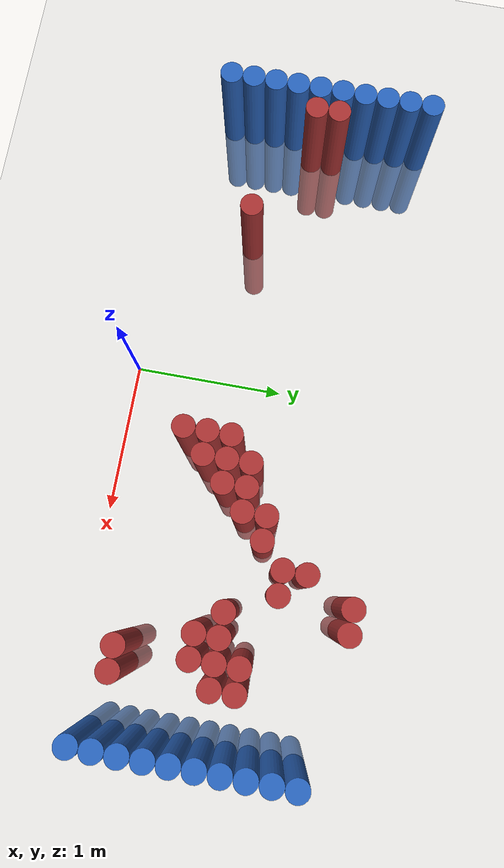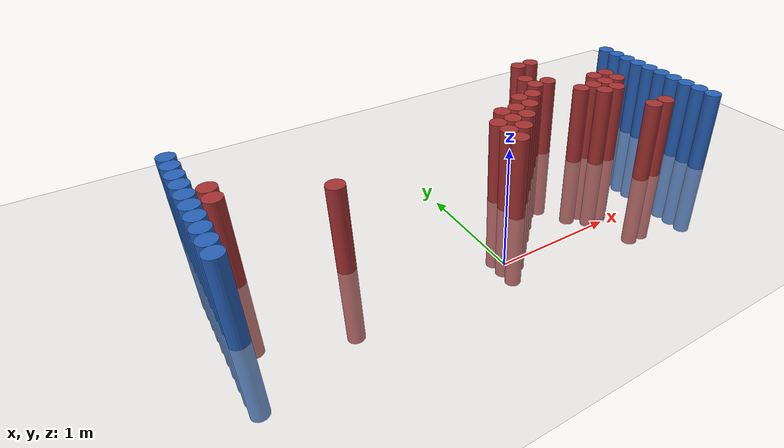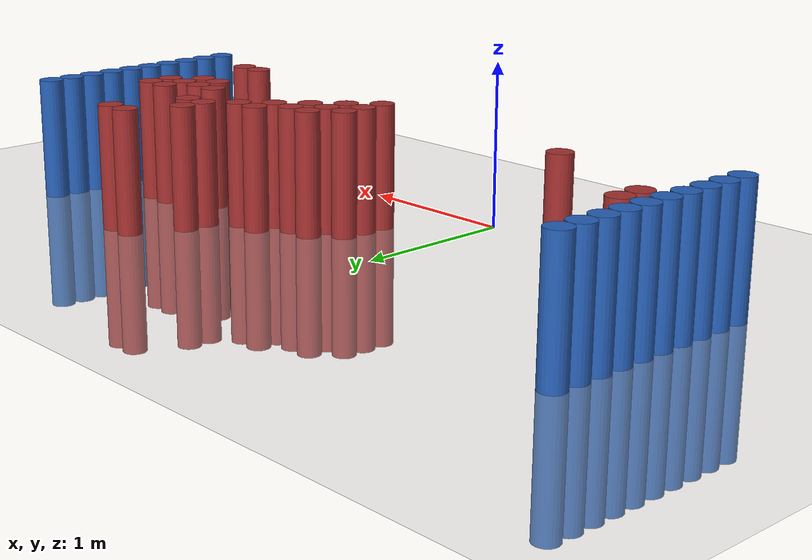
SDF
<sdf version="1.6">
 <world name="default">
  <model name="ground_plane">
   <static>1</static>
   <link name="link">
    <collision name="collision">
     <geometry><plane><normal>0 0 1</normal><size>100 100</size></plane></geometry>
     <surface><friction><ode><mu>100</mu><mu2>50</mu2></ode></friction></surface>
    </collision>
    <visual name="visual">
     <cast_shadows>0</cast_shadows>
     <geometry><plane><normal>0 0 1</normal><size>100 100</size></plane></geometry>
     <material>
      <script><uri>file://media/materials/scripts/gazebo.material</uri><name>Gazebo/Grey</name></script>
     </material>
    </visual>
   </link>
  </model>
  <model name="unit_cylinder_97">
   <static>1</static>
   <pose>-1.925000 0.325000 0.000000 0.000000 0.000000 0.000000</pose>
   <link name="link">
    <inertial>
     <mass>1</mass>
     <inertia><ixx>0.145833</ixx><ixy>0</ixy><ixz>0</ixz><iyy>0.145833</iyy><iyz>0</iyz><izz>0.125</izz></inertia>
    </inertial>
    <collision name="collision">
     <geometry><cylinder><radius>0.075000</radius><length>1.5</length></cylinder></geometry>
    </collision>
    <visual name="visual">
     <geometry><cylinder><radius>0.075000</radius><length>1.5</length></cylinder></geometry>
     <material>
      <ambient>0.152000 0.379000 0.720000 1</ambient>
      <diffuse>0.152000 0.379000 0.720000 1</diffuse>
     </material>
     <material>
      <script><name>Gazebo/Grey</name><uri>file://media/materials/scripts/gazebo.material</uri></script>
     </material>
    </visual>
   </link>
  </model>
  <model name="unit_cylinder_98">
   <static>1</static>
   <pose>-1.925000 0.475000 0.000000 0.000000 0.000000 0.000000</pose>
   <link name="link">
    <inertial>
     <mass>1</mass>
     <inertia><ixx>0.145833</ixx><ixy>0</ixy><ixz>0</ixz><iyy>0.145833</iyy><iyz>0</iyz><izz>0.125</izz></inertia>
    </inertial>
    <collision name="collision">
     <geometry><cylinder><radius>0.075000</radius><length>1.5</length></cylinder></geometry>
    </collision>
    <visual name="visual">
     <geometry><cylinder><radius>0.075000</radius><length>1.5</length></cylinder></geometry>
     <material>
      <ambient>0.152000 0.379000 0.720000 1</ambient>
      <diffuse>0.152000 0.379000 0.720000 1</diffuse>
     </material>
     <material>
      <script><name>Gazebo/Grey</name><uri>file://media/materials/scripts/gazebo.material</uri></script>
     </material>
    </visual>
   </link>
  </model>
  <model name="unit_cylinder_99">
   <static>1</static>
   <pose>-1.925000 0.625000 0.000000 0.000000 0.000000 0.000000</pose>
   <link name="link">
    <inertial>
     <mass>1</mass>
     <inertia><ixx>0.145833</ixx><ixy>0</ixy><ixz>0</ixz><iyy>0.145833</iyy><iyz>0</iyz><izz>0.125</izz></inertia>
    </inertial>
    <collision name="collision">
     <geometry><cylinder><radius>0.075000</radius><length>1.5</length></cylinder></geometry>
    </collision>
    <visual name="visual">
     <geometry><cylinder><radius>0.075000</radius><length>1.5</length></cylinder></geometry>
     <material>
      <ambient>0.152000 0.379000 0.720000 1</ambient>
      <diffuse>0.152000 0.379000 0.720000 1</diffuse>
     </material>
     <material>
      <script><name>Gazebo/Grey</name><uri>file://media/materials/scripts/gazebo.material</uri></script>
     </material>
    </visual>
   </link>
  </model>
  <model name="unit_cylinder_100">
   <static>1</static>
   <pose>-1.925000 0.775000 0.000000 0.000000 0.000000 0.000000</pose>
   <link name="link">
    <inertial>
     <mass>1</mass>
     <inertia><ixx>0.145833</ixx><ixy>0</ixy><ixz>0</ixz><iyy>0.145833</iyy><iyz>0</iyz><izz>0.125</izz></inertia>
    </inertial>
    <collision name="collision">
     <geometry><cylinder><radius>0.075000</radius><length>1.5</length></cylinder></geometry>
    </collision>
    <visual name="visual">
     <geometry><cylinder><radius>0.075000</radius><length>1.5</length></cylinder></geometry>
     <material>
      <ambient>0.152000 0.379000 0.720000 1</ambient>
      <diffuse>0.152000 0.379000 0.720000 1</diffuse>
     </material>
     <material>
      <script><name>Gazebo/Grey</name><uri>file://media/materials/scripts/gazebo.material</uri></script>
     </material>
    </visual>
   </link>
  </model>
  <model name="unit_cylinder_101">
   <static>1</static>
   <pose>-1.925000 0.925000 0.000000 0.000000 0.000000 0.000000</pose>
   <link name="link">
    <inertial>
     <mass>1</mass>
     <inertia><ixx>0.145833</ixx><ixy>0</ixy><ixz>0</ixz><iyy>0.145833</iyy><iyz>0</iyz><izz>0.125</izz></inertia>
    </inertial>
    <collision name="collision">
     <geometry><cylinder><radius>0.075000</radius><length>1.5</length></cylinder></geometry>
    </collision>
    <visual name="visual">
     <geometry><cylinder><radius>0.075000</radius><length>1.5</length></cylinder></geometry>
     <material>
      <ambient>0.152000 0.379000 0.720000 1</ambient>
      <diffuse>0.152000 0.379000 0.720000 1</diffuse>
     </material>
     <material>
      <script><name>Gazebo/Grey</name><uri>file://media/materials/scripts/gazebo.material</uri></script>
     </material>
    </visual>
   </link>
  </model>
  <model name="unit_cylinder_102">
   <static>1</static>
   <pose>-1.925000 1.075000 0.000000 0.000000 0.000000 0.000000</pose>
   <link name="link">
    <inertial>
     <mass>1</mass>
     <inertia><ixx>0.145833</ixx><ixy>0</ixy><ixz>0</ixz><iyy>0.145833</iyy><iyz>0</iyz><izz>0.125</izz></inertia>
    </inertial>
    <collision name="collision">
     <geometry><cylinder><radius>0.075000</radius><length>1.5</length></cylinder></geometry>
    </collision>
    <visual name="visual">
     <geometry><cylinder><radius>0.075000</radius><length>1.5</length></cylinder></geometry>
     <material>
      <ambient>0.152000 0.379000 0.720000 1</ambient>
      <diffuse>0.152000 0.379000 0.720000 1</diffuse>
     </material>
     <material>
      <script><name>Gazebo/Grey</name><uri>file://media/materials/scripts/gazebo.material</uri></script>
     </material>
    </visual>
   </link>
  </model>
  <model name="unit_cylinder_103">
   <static>1</static>
   <pose>-1.925000 1.225000 0.000000 0.000000 0.000000 0.000000</pose>
   <link name="link">
    <inertial>
     <mass>1</mass>
     <inertia><ixx>0.145833</ixx><ixy>0</ixy><ixz>0</ixz><iyy>0.145833</iyy><iyz>0</iyz><izz>0.125</izz></inertia>
    </inertial>
    <collision name="collision">
     <geometry><cylinder><radius>0.075000</radius><length>1.5</length></cylinder></geometry>
    </collision>
    <visual name="visual">
     <geometry><cylinder><radius>0.075000</radius><length>1.5</length></cylinder></geometry>
     <material>
      <ambient>0.152000 0.379000 0.720000 1</ambient>
      <diffuse>0.152000 0.379000 0.720000 1</diffuse>
     </material>
     <material>
      <script><name>Gazebo/Grey</name><uri>file://media/materials/scripts/gazebo.material</uri></script>
     </material>
    </visual>
   </link>
  </model>
  <model name="unit_cylinder_104">
   <static>1</static>
   <pose>-1.925000 1.375000 0.000000 0.000000 0.000000 0.000000</pose>
   <link name="link">
    <inertial>
     <mass>1</mass>
     <inertia><ixx>0.145833</ixx><ixy>0</ixy><ixz>0</ixz><iyy>0.145833</iyy><iyz>0</iyz><izz>0.125</izz></inertia>
    </inertial>
    <collision name="collision">
     <geometry><cylinder><radius>0.075000</radius><length>1.5</length></cylinder></geometry>
    </collision>
    <visual name="visual">
     <geometry><cylinder><radius>0.075000</radius><length>1.5</length></cylinder></geometry>
     <material>
      <ambient>0.152000 0.379000 0.720000 1</ambient>
      <diffuse>0.152000 0.379000 0.720000 1</diffuse>
     </material>
     <material>
      <script><name>Gazebo/Grey</name><uri>file://media/materials/scripts/gazebo.material</uri></script>
     </material>
    </visual>
   </link>
  </model>
  <model name="unit_cylinder_105">
   <static>1</static>
   <pose>-1.925000 1.525000 0.000000 0.000000 0.000000 0.000000</pose>
   <link name="link">
    <inertial>
     <mass>1</mass>
     <inertia><ixx>0.145833</ixx><ixy>0</ixy><ixz>0</ixz><iyy>0.145833</iyy><iyz>0</iyz><izz>0.125</izz></inertia>
    </inertial>
    <collision name="collision">
     <geometry><cylinder><radius>0.075000</radius><length>1.5</length></cylinder></geometry>
    </collision>
    <visual name="visual">
     <geometry><cylinder><radius>0.075000</radius><length>1.5</length></cylinder></geometry>
     <material>
      <ambient>0.152000 0.379000 0.720000 1</ambient>
      <diffuse>0.152000 0.379000 0.720000 1</diffuse>
     </material>
     <material>
      <script><name>Gazebo/Grey</name><uri>file://media/materials/scripts/gazebo.material</uri></script>
     </material>
    </visual>
   </link>
  </model>
  <model name="unit_cylinder_106">
   <static>1</static>
   <pose>-1.925000 1.675000 0.000000 0.000000 0.000000 0.000000</pose>
   <link name="link">
    <inertial>
     <mass>1</mass>
     <inertia><ixx>0.145833</ixx><ixy>0</ixy><ixz>0</ixz><iyy>0.145833</iyy><iyz>0</iyz><izz>0.125</izz></inertia>
    </inertial>
    <collision name="collision">
     <geometry><cylinder><radius>0.075000</radius><length>1.5</length></cylinder></geometry>
    </collision>
    <visual name="visual">
     <geometry><cylinder><radius>0.075000</radius><length>1.5</length></cylinder></geometry>
     <material>
      <ambient>0.152000 0.379000 0.720000 1</ambient>
      <diffuse>0.152000 0.379000 0.720000 1</diffuse>
     </material>
     <material>
      <script><name>Gazebo/Grey</name><uri>file://media/materials/scripts/gazebo.material</uri></script>
     </material>
    </visual>
   </link>
  </model>
  <model name="unit_cylinder_126">
   <static>1</static>
   <pose>-1.775000 0.925000 0.000000 0.000000 0.000000 0.000000</pose>
   <link name="link">
    <inertial>
     <mass>1</mass>
     <inertia><ixx>0.145833</ixx><ixy>0</ixy><ixz>0</ixz><iyy>0.145833</iyy><iyz>0</iyz><izz>0.125</izz></inertia>
    </inertial>
    <collision name="collision">
     <geometry><cylinder><radius>0.075000</radius><length>1.5</length></cylinder></geometry>
    </collision>
    <visual name="visual">
     <geometry><cylinder><radius>0.075000</radius><length>1.5</length></cylinder></geometry>
     <material>
      <ambient>0.648000 0.192000 0.192000 1</ambient>
      <diffuse>0.648000 0.192000 0.192000 1</diffuse>
     </material>
     <material>
      <script><name>Gazebo/Grey</name><uri>file://media/materials/scripts/gazebo.material</uri></script>
     </material>
    </visual>
   </link>
  </model>
  <model name="unit_cylinder_127">
   <static>1</static>
   <pose>-1.775000 1.075000 0.000000 0.000000 0.000000 0.000000</pose>
   <link name="link">
    <inertial>
     <mass>1</mass>
     <inertia><ixx>0.145833</ixx><ixy>0</ixy><ixz>0</ixz><iyy>0.145833</iyy><iyz>0</iyz><izz>0.125</izz></inertia>
    </inertial>
    <collision name="collision">
     <geometry><cylinder><radius>0.075000</radius><length>1.5</length></cylinder></geometry>
    </collision>
    <visual name="visual">
     <geometry><cylinder><radius>0.075000</radius><length>1.5</length></cylinder></geometry>
     <material>
      <ambient>0.648000 0.192000 0.192000 1</ambient>
      <diffuse>0.648000 0.192000 0.192000 1</diffuse>
     </material>
     <material>
      <script><name>Gazebo/Grey</name><uri>file://media/materials/scripts/gazebo.material</uri></script>
     </material>
    </visual>
   </link>
  </model>
  <model name="unit_cylinder_149">
   <static>1</static>
   <pose>-1.025000 0.625000 0.000000 0.000000 0.000000 0.000000</pose>
   <link name="link">
    <inertial>
     <mass>1</mass>
     <inertia><ixx>0.145833</ixx><ixy>0</ixy><ixz>0</ixz><iyy>0.145833</iyy><iyz>0</iyz><izz>0.125</izz></inertia>
    </inertial>
    <collision name="collision">
     <geometry><cylinder><radius>0.075000</radius><length>1.5</length></cylinder></geometry>
    </collision>
    <visual name="visual">
     <geometry><cylinder><radius>0.075000</radius><length>1.5</length></cylinder></geometry>
     <material>
      <ambient>0.648000 0.192000 0.192000 1</ambient>
      <diffuse>0.648000 0.192000 0.192000 1</diffuse>
     </material>
     <material>
      <script><name>Gazebo/Grey</name><uri>file://media/materials/scripts/gazebo.material</uri></script>
     </material>
    </visual>
   </link>
  </model>
  <model name="unit_cylinder_150">
   <static>1</static>
   <pose>0.475000 0.475000 0.000000 0.000000 0.000000 0.000000</pose>
   <link name="link">
    <inertial>
     <mass>1</mass>
     <inertia><ixx>0.145833</ixx><ixy>0</ixy><ixz>0</ixz><iyy>0.145833</iyy><iyz>0</iyz><izz>0.125</izz></inertia>
    </inertial>
    <collision name="collision">
     <geometry><cylinder><radius>0.075000</radius><length>1.5</length></cylinder></geometry>
    </collision>
    <visual name="visual">
     <geometry><cylinder><radius>0.075000</radius><length>1.5</length></cylinder></geometry>
     <material>
      <ambient>0.648000 0.192000 0.192000 1</ambient>
      <diffuse>0.648000 0.192000 0.192000 1</diffuse>
     </material>
     <material>
      <script><name>Gazebo/Grey</name><uri>file://media/materials/scripts/gazebo.material</uri></script>
     </material>
    </visual>
   </link>
  </model>
  <model name="unit_cylinder_151">
   <static>1</static>
   <pose>0.475000 0.625000 0.000000 0.000000 0.000000 0.000000</pose>
   <link name="link">
    <inertial>
     <mass>1</mass>
     <inertia><ixx>0.145833</ixx><ixy>0</ixy><ixz>0</ixz><iyy>0.145833</iyy><iyz>0</iyz><izz>0.125</izz></inertia>
    </inertial>
    <collision name="collision">
     <geometry><cylinder><radius>0.075000</radius><length>1.5</length></cylinder></geometry>
    </collision>
    <visual name="visual">
     <geometry><cylinder><radius>0.075000</radius><length>1.5</length></cylinder></geometry>
     <material>
      <ambient>0.648000 0.192000 0.192000 1</ambient>
      <diffuse>0.648000 0.192000 0.192000 1</diffuse>
     </material>
     <material>
      <script><name>Gazebo/Grey</name><uri>file://media/materials/scripts/gazebo.material</uri></script>
     </material>
    </visual>
   </link>
  </model>
  <model name="unit_cylinder_152">
   <static>1</static>
   <pose>0.475000 0.775000 0.000000 0.000000 0.000000 0.000000</pose>
   <link name="link">
    <inertial>
     <mass>1</mass>
     <inertia><ixx>0.145833</ixx><ixy>0</ixy><ixz>0</ixz><iyy>0.145833</iyy><iyz>0</iyz><izz>0.125</izz></inertia>
    </inertial>
    <collision name="collision">
     <geometry><cylinder><radius>0.075000</radius><length>1.5</length></cylinder></geometry>
    </collision>
    <visual name="visual">
     <geometry><cylinder><radius>0.075000</radius><length>1.5</length></cylinder></geometry>
     <material>
      <ambient>0.648000 0.192000 0.192000 1</ambient>
      <diffuse>0.648000 0.192000 0.192000 1</diffuse>
     </material>
     <material>
      <script><name>Gazebo/Grey</name><uri>file://media/materials/scripts/gazebo.material</uri></script>
     </material>
    </visual>
   </link>
  </model>
  <model name="unit_cylinder_155">
   <static>1</static>
   <pose>0.625000 0.625000 0.000000 0.000000 0.000000 0.000000</pose>
   <link name="link">
    <inertial>
     <mass>1</mass>
     <inertia><ixx>0.145833</ixx><ixy>0</ixy><ixz>0</ixz><iyy>0.145833</iyy><iyz>0</iyz><izz>0.125</izz></inertia>
    </inertial>
    <collision name="collision">
     <geometry><cylinder><radius>0.075000</radius><length>1.5</length></cylinder></geometry>
    </collision>
    <visual name="visual">
     <geometry><cylinder><radius>0.075000</radius><length>1.5</length></cylinder></geometry>
     <material>
      <ambient>0.648000 0.192000 0.192000 1</ambient>
      <diffuse>0.648000 0.192000 0.192000 1</diffuse>
     </material>
     <material>
      <script><name>Gazebo/Grey</name><uri>file://media/materials/scripts/gazebo.material</uri></script>
     </material>
    </visual>
   </link>
  </model>
  <model name="unit_cylinder_156">
   <static>1</static>
   <pose>0.625000 0.775000 0.000000 0.000000 0.000000 0.000000</pose>
   <link name="link">
    <inertial>
     <mass>1</mass>
     <inertia><ixx>0.145833</ixx><ixy>0</ixy><ixz>0</ixz><iyy>0.145833</iyy><iyz>0</iyz><izz>0.125</izz></inertia>
    </inertial>
    <collision name="collision">
     <geometry><cylinder><radius>0.075000</radius><length>1.5</length></cylinder></geometry>
    </collision>
    <visual name="visual">
     <geometry><cylinder><radius>0.075000</radius><length>1.5</length></cylinder></geometry>
     <material>
      <ambient>0.648000 0.192000 0.192000 1</ambient>
      <diffuse>0.648000 0.192000 0.192000 1</diffuse>
     </material>
     <material>
      <script><name>Gazebo/Grey</name><uri>file://media/materials/scripts/gazebo.material</uri></script>
     </material>
    </visual>
   </link>
  </model>
  <model name="unit_cylinder_157">
   <static>1</static>
   <pose>0.625000 0.925000 0.000000 0.000000 0.000000 0.000000</pose>
   <link name="link">
    <inertial>
     <mass>1</mass>
     <inertia><ixx>0.145833</ixx><ixy>0</ixy><ixz>0</ixz><iyy>0.145833</iyy><iyz>0</iyz><izz>0.125</izz></inertia>
    </inertial>
    <collision name="collision">
     <geometry><cylinder><radius>0.075000</radius><length>1.5</length></cylinder></geometry>
    </collision>
    <visual name="visual">
     <geometry><cylinder><radius>0.075000</radius><length>1.5</length></cylinder></geometry>
     <material>
      <ambient>0.648000 0.192000 0.192000 1</ambient>
      <diffuse>0.648000 0.192000 0.192000 1</diffuse>
     </material>
     <material>
      <script><name>Gazebo/Grey</name><uri>file://media/materials/scripts/gazebo.material</uri></script>
     </material>
    </visual>
   </link>
  </model>
  <model name="unit_cylinder_163">
   <static>1</static>
   <pose>0.775000 0.775000 0.000000 0.000000 0.000000 0.000000</pose>
   <link name="link">
    <inertial>
     <mass>1</mass>
     <inertia><ixx>0.145833</ixx><ixy>0</ixy><ixz>0</ixz><iyy>0.145833</iyy><iyz>0</iyz><izz>0.125</izz></inertia>
    </inertial>
    <collision name="collision">
     <geometry><cylinder><radius>0.075000</radius><length>1.5</length></cylinder></geometry>
    </collision>
    <visual name="visual">
     <geometry><cylinder><radius>0.075000</radius><length>1.5</length></cylinder></geometry>
     <material>
      <ambient>0.648000 0.192000 0.192000 1</ambient>
      <diffuse>0.648000 0.192000 0.192000 1</diffuse>
     </material>
     <material>
      <script><name>Gazebo/Grey</name><uri>file://media/materials/scripts/gazebo.material</uri></script>
     </material>
    </visual>
   </link>
  </model>
  <model name="unit_cylinder_164">
   <static>1</static>
   <pose>0.775000 0.925000 0.000000 0.000000 0.000000 0.000000</pose>
   <link name="link">
    <inertial>
     <mass>1</mass>
     <inertia><ixx>0.145833</ixx><ixy>0</ixy><ixz>0</ixz><iyy>0.145833</iyy><iyz>0</iyz><izz>0.125</izz></inertia>
    </inertial>
    <collision name="collision">
     <geometry><cylinder><radius>0.075000</radius><length>1.5</length></cylinder></geometry>
    </collision>
    <visual name="visual">
     <geometry><cylinder><radius>0.075000</radius><length>1.5</length></cylinder></geometry>
     <material>
      <ambient>0.648000 0.192000 0.192000 1</ambient>
      <diffuse>0.648000 0.192000 0.192000 1</diffuse>
     </material>
     <material>
      <script><name>Gazebo/Grey</name><uri>file://media/materials/scripts/gazebo.material</uri></script>
     </material>
    </visual>
   </link>
  </model>
  <model name="unit_cylinder_169">
   <static>1</static>
   <pose>0.925000 0.925000 0.000000 0.000000 0.000000 0.000000</pose>
   <link name="link">
    <inertial>
     <mass>1</mass>
     <inertia><ixx>0.145833</ixx><ixy>0</ixy><ixz>0</ixz><iyy>0.145833</iyy><iyz>0</iyz><izz>0.125</izz></inertia>
    </inertial>
    <collision name="collision">
     <geometry><cylinder><radius>0.075000</radius><length>1.5</length></cylinder></geometry>
    </collision>
    <visual name="visual">
     <geometry><cylinder><radius>0.075000</radius><length>1.5</length></cylinder></geometry>
     <material>
      <ambient>0.648000 0.192000 0.192000 1</ambient>
      <diffuse>0.648000 0.192000 0.192000 1</diffuse>
     </material>
     <material>
      <script><name>Gazebo/Grey</name><uri>file://media/materials/scripts/gazebo.material</uri></script>
     </material>
    </visual>
   </link>
  </model>
  <model name="unit_cylinder_170">
   <static>1</static>
   <pose>0.925000 1.075000 0.000000 0.000000 0.000000 0.000000</pose>
   <link name="link">
    <inertial>
     <mass>1</mass>
     <inertia><ixx>0.145833</ixx><ixy>0</ixy><ixz>0</ixz><iyy>0.145833</iyy><iyz>0</iyz><izz>0.125</izz></inertia>
    </inertial>
    <collision name="collision">
     <geometry><cylinder><radius>0.075000</radius><length>1.5</length></cylinder></geometry>
    </collision>
    <visual name="visual">
     <geometry><cylinder><radius>0.075000</radius><length>1.5</length></cylinder></geometry>
     <material>
      <ambient>0.648000 0.192000 0.192000 1</ambient>
      <diffuse>0.648000 0.192000 0.192000 1</diffuse>
     </material>
     <material>
      <script><name>Gazebo/Grey</name><uri>file://media/materials/scripts/gazebo.material</uri></script>
     </material>
    </visual>
   </link>
  </model>
  <model name="unit_cylinder_175">
   <static>1</static>
   <pose>1.075000 1.075000 0.000000 0.000000 0.000000 0.000000</pose>
   <link name="link">
    <inertial>
     <mass>1</mass>
     <inertia><ixx>0.145833</ixx><ixy>0</ixy><ixz>0</ixz><iyy>0.145833</iyy><iyz>0</iyz><izz>0.125</izz></inertia>
    </inertial>
    <collision name="collision">
     <geometry><cylinder><radius>0.075000</radius><length>1.5</length></cylinder></geometry>
    </collision>
    <visual name="visual">
     <geometry><cylinder><radius>0.075000</radius><length>1.5</length></cylinder></geometry>
     <material>
      <ambient>0.648000 0.192000 0.192000 1</ambient>
      <diffuse>0.648000 0.192000 0.192000 1</diffuse>
     </material>
     <material>
      <script><name>Gazebo/Grey</name><uri>file://media/materials/scripts/gazebo.material</uri></script>
     </material>
    </visual>
   </link>
  </model>
  <model name="unit_cylinder_180">
   <static>1</static>
   <pose>1.225000 1.225000 0.000000 0.000000 0.000000 0.000000</pose>
   <link name="link">
    <inertial>
     <mass>1</mass>
     <inertia><ixx>0.145833</ixx><ixy>0</ixy><ixz>0</ixz><iyy>0.145833</iyy><iyz>0</iyz><izz>0.125</izz></inertia>
    </inertial>
    <collision name="collision">
     <geometry><cylinder><radius>0.075000</radius><length>1.5</length></cylinder></geometry>
    </collision>
    <visual name="visual">
     <geometry><cylinder><radius>0.075000</radius><length>1.5</length></cylinder></geometry>
     <material>
      <ambient>0.648000 0.192000 0.192000 1</ambient>
      <diffuse>0.648000 0.192000 0.192000 1</diffuse>
     </material>
     <material>
      <script><name>Gazebo/Grey</name><uri>file://media/materials/scripts/gazebo.material</uri></script>
     </material>
    </visual>
   </link>
  </model>
  <model name="unit_cylinder_181">
   <static>1</static>
   <pose>1.225000 1.375000 0.000000 0.000000 0.000000 0.000000</pose>
   <link name="link">
    <inertial>
     <mass>1</mass>
     <inertia><ixx>0.145833</ixx><ixy>0</ixy><ixz>0</ixz><iyy>0.145833</iyy><iyz>0</iyz><izz>0.125</izz></inertia>
    </inertial>
    <collision name="collision">
     <geometry><cylinder><radius>0.075000</radius><length>1.5</length></cylinder></geometry>
    </collision>
    <visual name="visual">
     <geometry><cylinder><radius>0.075000</radius><length>1.5</length></cylinder></geometry>
     <material>
      <ambient>0.648000 0.192000 0.192000 1</ambient>
      <diffuse>0.648000 0.192000 0.192000 1</diffuse>
     </material>
     <material>
      <script><name>Gazebo/Grey</name><uri>file://media/materials/scripts/gazebo.material</uri></script>
     </material>
    </visual>
   </link>
  </model>
  <model name="unit_cylinder_183">
   <static>1</static>
   <pose>1.375000 1.225000 0.000000 0.000000 0.000000 0.000000</pose>
   <link name="link">
    <inertial>
     <mass>1</mass>
     <inertia><ixx>0.145833</ixx><ixy>0</ixy><ixz>0</ixz><iyy>0.145833</iyy><iyz>0</iyz><izz>0.125</izz></inertia>
    </inertial>
    <collision name="collision">
     <geometry><cylinder><radius>0.075000</radius><length>1.5</length></cylinder></geometry>
    </collision>
    <visual name="visual">
     <geometry><cylinder><radius>0.075000</radius><length>1.5</length></cylinder></geometry>
     <material>
      <ambient>0.648000 0.192000 0.192000 1</ambient>
      <diffuse>0.648000 0.192000 0.192000 1</diffuse>
     </material>
     <material>
      <script><name>Gazebo/Grey</name><uri>file://media/materials/scripts/gazebo.material</uri></script>
     </material>
    </visual>
   </link>
  </model>
  <model name="unit_cylinder_184">
   <static>1</static>
   <pose>1.375000 1.675000 0.000000 0.000000 0.000000 0.000000</pose>
   <link name="link">
    <inertial>
     <mass>1</mass>
     <inertia><ixx>0.145833</ixx><ixy>0</ixy><ixz>0</ixz><iyy>0.145833</iyy><iyz>0</iyz><izz>0.125</izz></inertia>
    </inertial>
    <collision name="collision">
     <geometry><cylinder><radius>0.075000</radius><length>1.5</length></cylinder></geometry>
    </collision>
    <visual name="visual">
     <geometry><cylinder><radius>0.075000</radius><length>1.5</length></cylinder></geometry>
     <material>
      <ambient>0.648000 0.192000 0.192000 1</ambient>
      <diffuse>0.648000 0.192000 0.192000 1</diffuse>
     </material>
     <material>
      <script><name>Gazebo/Grey</name><uri>file://media/materials/scripts/gazebo.material</uri></script>
     </material>
    </visual>
   </link>
  </model>
  <model name="unit_cylinder_186">
   <static>1</static>
   <pose>1.525000 0.925000 0.000000 0.000000 0.000000 0.000000</pose>
   <link name="link">
    <inertial>
     <mass>1</mass>
     <inertia><ixx>0.145833</ixx><ixy>0</ixy><ixz>0</ixz><iyy>0.145833</iyy><iyz>0</iyz><izz>0.125</izz></inertia>
    </inertial>
    <collision name="collision">
     <geometry><cylinder><radius>0.075000</radius><length>1.5</length></cylinder></geometry>
    </collision>
    <visual name="visual">
     <geometry><cylinder><radius>0.075000</radius><length>1.5</length></cylinder></geometry>
     <material>
      <ambient>0.648000 0.192000 0.192000 1</ambient>
      <diffuse>0.648000 0.192000 0.192000 1</diffuse>
     </material>
     <material>
      <script><name>Gazebo/Grey</name><uri>file://media/materials/scripts/gazebo.material</uri></script>
     </material>
    </visual>
   </link>
  </model>
  <model name="unit_cylinder_187">
   <static>1</static>
   <pose>1.525000 1.675000 0.000000 0.000000 0.000000 0.000000</pose>
   <link name="link">
    <inertial>
     <mass>1</mass>
     <inertia><ixx>0.145833</ixx><ixy>0</ixy><ixz>0</ixz><iyy>0.145833</iyy><iyz>0</iyz><izz>0.125</izz></inertia>
    </inertial>
    <collision name="collision">
     <geometry><cylinder><radius>0.075000</radius><length>1.5</length></cylinder></geometry>
    </collision>
    <visual name="visual">
     <geometry><cylinder><radius>0.075000</radius><length>1.5</length></cylinder></geometry>
     <material>
      <ambient>0.648000 0.192000 0.192000 1</ambient>
      <diffuse>0.648000 0.192000 0.192000 1</diffuse>
     </material>
     <material>
      <script><name>Gazebo/Grey</name><uri>file://media/materials/scripts/gazebo.material</uri></script>
     </material>
    </visual>
   </link>
  </model>
  <model name="unit_cylinder_188">
   <static>1</static>
   <pose>1.675000 0.775000 0.000000 0.000000 0.000000 0.000000</pose>
   <link name="link">
    <inertial>
     <mass>1</mass>
     <inertia><ixx>0.145833</ixx><ixy>0</ixy><ixz>0</ixz><iyy>0.145833</iyy><iyz>0</iyz><izz>0.125</izz></inertia>
    </inertial>
    <collision name="collision">
     <geometry><cylinder><radius>0.075000</radius><length>1.5</length></cylinder></geometry>
    </collision>
    <visual name="visual">
     <geometry><cylinder><radius>0.075000</radius><length>1.5</length></cylinder></geometry>
     <material>
      <ambient>0.648000 0.192000 0.192000 1</ambient>
      <diffuse>0.648000 0.192000 0.192000 1</diffuse>
     </material>
     <material>
      <script><name>Gazebo/Grey</name><uri>file://media/materials/scripts/gazebo.material</uri></script>
     </material>
    </visual>
   </link>
  </model>
  <model name="unit_cylinder_189">
   <static>1</static>
   <pose>1.675000 0.925000 0.000000 0.000000 0.000000 0.000000</pose>
   <link name="link">
    <inertial>
     <mass>1</mass>
     <inertia><ixx>0.145833</ixx><ixy>0</ixy><ixz>0</ixz><iyy>0.145833</iyy><iyz>0</iyz><izz>0.125</izz></inertia>
    </inertial>
    <collision name="collision">
     <geometry><cylinder><radius>0.075000</radius><length>1.5</length></cylinder></geometry>
    </collision>
    <visual name="visual">
     <geometry><cylinder><radius>0.075000</radius><length>1.5</length></cylinder></geometry>
     <material>
      <ambient>0.648000 0.192000 0.192000 1</ambient>
      <diffuse>0.648000 0.192000 0.192000 1</diffuse>
     </material>
     <material>
      <script><name>Gazebo/Grey</name><uri>file://media/materials/scripts/gazebo.material</uri></script>
     </material>
    </visual>
   </link>
  </model>
  <model name="unit_cylinder_192">
   <static>1</static>
   <pose>1.825000 0.325000 0.000000 0.000000 0.000000 0.000000</pose>
   <link name="link">
    <inertial>
     <mass>1</mass>
     <inertia><ixx>0.145833</ixx><ixy>0</ixy><ixz>0</ixz><iyy>0.145833</iyy><iyz>0</iyz><izz>0.125</izz></inertia>
    </inertial>
    <collision name="collision">
     <geometry><cylinder><radius>0.075000</radius><length>1.5</length></cylinder></geometry>
    </collision>
    <visual name="visual">
     <geometry><cylinder><radius>0.075000</radius><length>1.5</length></cylinder></geometry>
     <material>
      <ambient>0.648000 0.192000 0.192000 1</ambient>
      <diffuse>0.648000 0.192000 0.192000 1</diffuse>
     </material>
     <material>
      <script><name>Gazebo/Grey</name><uri>file://media/materials/scripts/gazebo.material</uri></script>
     </material>
    </visual>
   </link>
  </model>
  <model name="unit_cylinder_193">
   <static>1</static>
   <pose>1.825000 0.775000 0.000000 0.000000 0.000000 0.000000</pose>
   <link name="link">
    <inertial>
     <mass>1</mass>
     <inertia><ixx>0.145833</ixx><ixy>0</ixy><ixz>0</ixz><iyy>0.145833</iyy><iyz>0</iyz><izz>0.125</izz></inertia>
    </inertial>
    <collision name="collision">
     <geometry><cylinder><radius>0.075000</radius><length>1.5</length></cylinder></geometry>
    </collision>
    <visual name="visual">
     <geometry><cylinder><radius>0.075000</radius><length>1.5</length></cylinder></geometry>
     <material>
      <ambient>0.648000 0.192000 0.192000 1</ambient>
      <diffuse>0.648000 0.192000 0.192000 1</diffuse>
     </material>
     <material>
      <script><name>Gazebo/Grey</name><uri>file://media/materials/scripts/gazebo.material</uri></script>
     </material>
    </visual>
   </link>
  </model>
  <model name="unit_cylinder_194">
   <static>1</static>
   <pose>1.825000 0.925000 0.000000 0.000000 0.000000 0.000000</pose>
   <link name="link">
    <inertial>
     <mass>1</mass>
     <inertia><ixx>0.145833</ixx><ixy>0</ixy><ixz>0</ixz><iyy>0.145833</iyy><iyz>0</iyz><izz>0.125</izz></inertia>
    </inertial>
    <collision name="collision">
     <geometry><cylinder><radius>0.075000</radius><length>1.5</length></cylinder></geometry>
    </collision>
    <visual name="visual">
     <geometry><cylinder><radius>0.075000</radius><length>1.5</length></cylinder></geometry>
     <material>
      <ambient>0.648000 0.192000 0.192000 1</ambient>
      <diffuse>0.648000 0.192000 0.192000 1</diffuse>
     </material>
     <material>
      <script><name>Gazebo/Grey</name><uri>file://media/materials/scripts/gazebo.material</uri></script>
     </material>
    </visual>
   </link>
  </model>
  <model name="unit_cylinder_195">
   <static>1</static>
   <pose>1.825000 1.075000 0.000000 0.000000 0.000000 0.000000</pose>
   <link name="link">
    <inertial>
     <mass>1</mass>
     <inertia><ixx>0.145833</ixx><ixy>0</ixy><ixz>0</ixz><iyy>0.145833</iyy><iyz>0</iyz><izz>0.125</izz></inertia>
    </inertial>
    <collision name="collision">
     <geometry><cylinder><radius>0.075000</radius><length>1.5</length></cylinder></geometry>
    </collision>
    <visual name="visual">
     <geometry><cylinder><radius>0.075000</radius><length>1.5</length></cylinder></geometry>
     <material>
      <ambient>0.648000 0.192000 0.192000 1</ambient>
      <diffuse>0.648000 0.192000 0.192000 1</diffuse>
     </material>
     <material>
      <script><name>Gazebo/Grey</name><uri>file://media/materials/scripts/gazebo.material</uri></script>
     </material>
    </visual>
   </link>
  </model>
  <model name="unit_cylinder_201">
   <static>1</static>
   <pose>1.975000 0.325000 0.000000 0.000000 0.000000 0.000000</pose>
   <link name="link">
    <inertial>
     <mass>1</mass>
     <inertia><ixx>0.145833</ixx><ixy>0</ixy><ixz>0</ixz><iyy>0.145833</iyy><iyz>0</iyz><izz>0.125</izz></inertia>
    </inertial>
    <collision name="collision">
     <geometry><cylinder><radius>0.075000</radius><length>1.5</length></cylinder></geometry>
    </collision>
    <visual name="visual">
     <geometry><cylinder><radius>0.075000</radius><length>1.5</length></cylinder></geometry>
     <material>
      <ambient>0.648000 0.192000 0.192000 1</ambient>
      <diffuse>0.648000 0.192000 0.192000 1</diffuse>
     </material>
     <material>
      <script><name>Gazebo/Grey</name><uri>file://media/materials/scripts/gazebo.material</uri></script>
     </material>
    </visual>
   </link>
  </model>
  <model name="unit_cylinder_202">
   <static>1</static>
   <pose>1.975000 0.925000 0.000000 0.000000 0.000000 0.000000</pose>
   <link name="link">
    <inertial>
     <mass>1</mass>
     <inertia><ixx>0.145833</ixx><ixy>0</ixy><ixz>0</ixz><iyy>0.145833</iyy><iyz>0</iyz><izz>0.125</izz></inertia>
    </inertial>
    <collision name="collision">
     <geometry><cylinder><radius>0.075000</radius><length>1.5</length></cylinder></geometry>
    </collision>
    <visual name="visual">
     <geometry><cylinder><radius>0.075000</radius><length>1.5</length></cylinder></geometry>
     <material>
      <ambient>0.648000 0.192000 0.192000 1</ambient>
      <diffuse>0.648000 0.192000 0.192000 1</diffuse>
     </material>
     <material>
      <script><name>Gazebo/Grey</name><uri>file://media/materials/scripts/gazebo.material</uri></script>
     </material>
    </visual>
   </link>
  </model>
  <model name="unit_cylinder_203">
   <static>1</static>
   <pose>1.975000 1.075000 0.000000 0.000000 0.000000 0.000000</pose>
   <link name="link">
    <inertial>
     <mass>1</mass>
     <inertia><ixx>0.145833</ixx><ixy>0</ixy><ixz>0</ixz><iyy>0.145833</iyy><iyz>0</iyz><izz>0.125</izz></inertia>
    </inertial>
    <collision name="collision">
     <geometry><cylinder><radius>0.075000</radius><length>1.5</length></cylinder></geometry>
    </collision>
    <visual name="visual">
     <geometry><cylinder><radius>0.075000</radius><length>1.5</length></cylinder></geometry>
     <material>
      <ambient>0.648000 0.192000 0.192000 1</ambient>
      <diffuse>0.648000 0.192000 0.192000 1</diffuse>
     </material>
     <material>
      <script><name>Gazebo/Grey</name><uri>file://media/materials/scripts/gazebo.material</uri></script>
     </material>
    </visual>
   </link>
  </model>
  <model name="unit_cylinder_214">
   <static>1</static>
   <pose>2.425000 0.175000 0.000000 0.000000 0.000000 0.000000</pose>
   <link name="link">
    <inertial>
     <mass>1</mass>
     <inertia><ixx>0.145833</ixx><ixy>0</ixy><ixz>0</ixz><iyy>0.145833</iyy><iyz>0</iyz><izz>0.125</izz></inertia>
    </inertial>
    <collision name="collision">
     <geometry><cylinder><radius>0.075000</radius><length>1.5</length></cylinder></geometry>
    </collision>
    <visual name="visual">
     <geometry><cylinder><radius>0.075000</radius><length>1.5</length></cylinder></geometry>
     <material>
      <ambient>0.152000 0.379000 0.720000 1</ambient>
      <diffuse>0.152000 0.379000 0.720000 1</diffuse>
     </material>
     <material>
      <script><name>Gazebo/Grey</name><uri>file://media/materials/scripts/gazebo.material</uri></script>
     </material>
    </visual>
   </link>
  </model>
  <model name="unit_cylinder_215">
   <static>1</static>
   <pose>2.425000 0.325000 0.000000 0.000000 0.000000 0.000000</pose>
   <link name="link">
    <inertial>
     <mass>1</mass>
     <inertia><ixx>0.145833</ixx><ixy>0</ixy><ixz>0</ixz><iyy>0.145833</iyy><iyz>0</iyz><izz>0.125</izz></inertia>
    </inertial>
    <collision name="collision">
     <geometry><cylinder><radius>0.075000</radius><length>1.5</length></cylinder></geometry>
    </collision>
    <visual name="visual">
     <geometry><cylinder><radius>0.075000</radius><length>1.5</length></cylinder></geometry>
     <material>
      <ambient>0.152000 0.379000 0.720000 1</ambient>
      <diffuse>0.152000 0.379000 0.720000 1</diffuse>
     </material>
     <material>
      <script><name>Gazebo/Grey</name><uri>file://media/materials/scripts/gazebo.material</uri></script>
     </material>
    </visual>
   </link>
  </model>
  <model name="unit_cylinder_216">
   <static>1</static>
   <pose>2.425000 0.475000 0.000000 0.000000 0.000000 0.000000</pose>
   <link name="link">
    <inertial>
     <mass>1</mass>
     <inertia><ixx>0.145833</ixx><ixy>0</ixy><ixz>0</ixz><iyy>0.145833</iyy><iyz>0</iyz><izz>0.125</izz></inertia>
    </inertial>
    <collision name="collision">
     <geometry><cylinder><radius>0.075000</radius><length>1.5</length></cylinder></geometry>
    </collision>
    <visual name="visual">
     <geometry><cylinder><radius>0.075000</radius><length>1.5</length></cylinder></geometry>
     <material>
      <ambient>0.152000 0.379000 0.720000 1</ambient>
      <diffuse>0.152000 0.379000 0.720000 1</diffuse>
     </material>
     <material>
      <script><name>Gazebo/Grey</name><uri>file://media/materials/scripts/gazebo.material</uri></script>
     </material>
    </visual>
   </link>
  </model>
  <model name="unit_cylinder_217">
   <static>1</static>
   <pose>2.425000 0.625000 0.000000 0.000000 0.000000 0.000000</pose>
   <link name="link">
    <inertial>
     <mass>1</mass>
     <inertia><ixx>0.145833</ixx><ixy>0</ixy><ixz>0</ixz><iyy>0.145833</iyy><iyz>0</iyz><izz>0.125</izz></inertia>
    </inertial>
    <collision name="collision">
     <geometry><cylinder><radius>0.075000</radius><length>1.5</length></cylinder></geometry>
    </collision>
    <visual name="visual">
     <geometry><cylinder><radius>0.075000</radius><length>1.5</length></cylinder></geometry>
     <material>
      <ambient>0.152000 0.379000 0.720000 1</ambient>
      <diffuse>0.152000 0.379000 0.720000 1</diffuse>
     </material>
     <material>
      <script><name>Gazebo/Grey</name><uri>file://media/materials/scripts/gazebo.material</uri></script>
     </material>
    </visual>
   </link>
  </model>
  <model name="unit_cylinder_218">
   <static>1</static>
   <pose>2.425000 0.775000 0.000000 0.000000 0.000000 0.000000</pose>
   <link name="link">
    <inertial>
     <mass>1</mass>
     <inertia><ixx>0.145833</ixx><ixy>0</ixy><ixz>0</ixz><iyy>0.145833</iyy><iyz>0</iyz><izz>0.125</izz></inertia>
    </inertial>
    <collision name="collision">
     <geometry><cylinder><radius>0.075000</radius><length>1.5</length></cylinder></geometry>
    </collision>
    <visual name="visual">
     <geometry><cylinder><radius>0.075000</radius><length>1.5</length></cylinder></geometry>
     <material>
      <ambient>0.152000 0.379000 0.720000 1</ambient>
      <diffuse>0.152000 0.379000 0.720000 1</diffuse>
     </material>
     <material>
      <script><name>Gazebo/Grey</name><uri>file://media/materials/scripts/gazebo.material</uri></script>
     </material>
    </visual>
   </link>
  </model>
  <model name="unit_cylinder_219">
   <static>1</static>
   <pose>2.425000 0.925000 0.000000 0.000000 0.000000 0.000000</pose>
   <link name="link">
    <inertial>
     <mass>1</mass>
     <inertia><ixx>0.145833</ixx><ixy>0</ixy><ixz>0</ixz><iyy>0.145833</iyy><iyz>0</iyz><izz>0.125</izz></inertia>
    </inertial>
    <collision name="collision">
     <geometry><cylinder><radius>0.075000</radius><length>1.5</length></cylinder></geometry>
    </collision>
    <visual name="visual">
     <geometry><cylinder><radius>0.075000</radius><length>1.5</length></cylinder></geometry>
     <material>
      <ambient>0.152000 0.379000 0.720000 1</ambient>
      <diffuse>0.152000 0.379000 0.720000 1</diffuse>
     </material>
     <material>
      <script><name>Gazebo/Grey</name><uri>file://media/materials/scripts/gazebo.material</uri></script>
     </material>
    </visual>
   </link>
  </model>
  <model name="unit_cylinder_220">
   <static>1</static>
   <pose>2.425000 1.075000 0.000000 0.000000 0.000000 0.000000</pose>
   <link name="link">
    <inertial>
     <mass>1</mass>
     <inertia><ixx>0.145833</ixx><ixy>0</ixy><ixz>0</ixz><iyy>0.145833</iyy><iyz>0</iyz><izz>0.125</izz></inertia>
    </inertial>
    <collision name="collision">
     <geometry><cylinder><radius>0.075000</radius><length>1.5</length></cylinder></geometry>
    </collision>
    <visual name="visual">
     <geometry><cylinder><radius>0.075000</radius><length>1.5</length></cylinder></geometry>
     <material>
      <ambient>0.152000 0.379000 0.720000 1</ambient>
      <diffuse>0.152000 0.379000 0.720000 1</diffuse>
     </material>
     <material>
      <script><name>Gazebo/Grey</name><uri>file://media/materials/scripts/gazebo.material</uri></script>
     </material>
    </visual>
   </link>
  </model>
  <model name="unit_cylinder_221">
   <static>1</static>
   <pose>2.425000 1.225000 0.000000 0.000000 0.000000 0.000000</pose>
   <link name="link">
    <inertial>
     <mass>1</mass>
     <inertia><ixx>0.145833</ixx><ixy>0</ixy><ixz>0</ixz><iyy>0.145833</iyy><iyz>0</iyz><izz>0.125</izz></inertia>
    </inertial>
    <collision name="collision">
     <geometry><cylinder><radius>0.075000</radius><length>1.5</length></cylinder></geometry>
    </collision>
    <visual name="visual">
     <geometry><cylinder><radius>0.075000</radius><length>1.5</length></cylinder></geometry>
     <material>
      <ambient>0.152000 0.379000 0.720000 1</ambient>
      <diffuse>0.152000 0.379000 0.720000 1</diffuse>
     </material>
     <material>
      <script><name>Gazebo/Grey</name><uri>file://media/materials/scripts/gazebo.material</uri></script>
     </material>
    </visual>
   </link>
  </model>
  <model name="unit_cylinder_222">
   <static>1</static>
   <pose>2.425000 1.375000 0.000000 0.000000 0.000000 0.000000</pose>
   <link name="link">
    <inertial>
     <mass>1</mass>
     <inertia><ixx>0.145833</ixx><ixy>0</ixy><ixz>0</ixz><iyy>0.145833</iyy><iyz>0</iyz><izz>0.125</izz></inertia>
    </inertial>
    <collision name="collision">
     <geometry><cylinder><radius>0.075000</radius><length>1.5</length></cylinder></geometry>
    </collision>
    <visual name="visual">
     <geometry><cylinder><radius>0.075000</radius><length>1.5</length></cylinder></geometry>
     <material>
      <ambient>0.152000 0.379000 0.720000 1</ambient>
      <diffuse>0.152000 0.379000 0.720000 1</diffuse>
     </material>
     <material>
      <script><name>Gazebo/Grey</name><uri>file://media/materials/scripts/gazebo.material</uri></script>
     </material>
    </visual>
   </link>
  </model>
  <model name="unit_cylinder_223">
   <static>1</static>
   <pose>2.425000 1.525000 0.000000 0.000000 0.000000 0.000000</pose>
   <link name="link">
    <inertial>
     <mass>1</mass>
     <inertia><ixx>0.145833</ixx><ixy>0</ixy><ixz>0</ixz><iyy>0.145833</iyy><iyz>0</iyz><izz>0.125</izz></inertia>
    </inertial>
    <collision name="collision">
     <geometry><cylinder><radius>0.075000</radius><length>1.5</length></cylinder></geometry>
    </collision>
    <visual name="visual">
     <geometry><cylinder><radius>0.075000</radius><length>1.5</length></cylinder></geometry>
     <material>
      <ambient>0.152000 0.379000 0.720000 1</ambient>
      <diffuse>0.152000 0.379000 0.720000 1</diffuse>
     </material>
     <material>
      <script><name>Gazebo/Grey</name><uri>file://media/materials/scripts/gazebo.material</uri></script>
     </material>
    </visual>
   </link>
  </model>
 </world>
</sdf>
